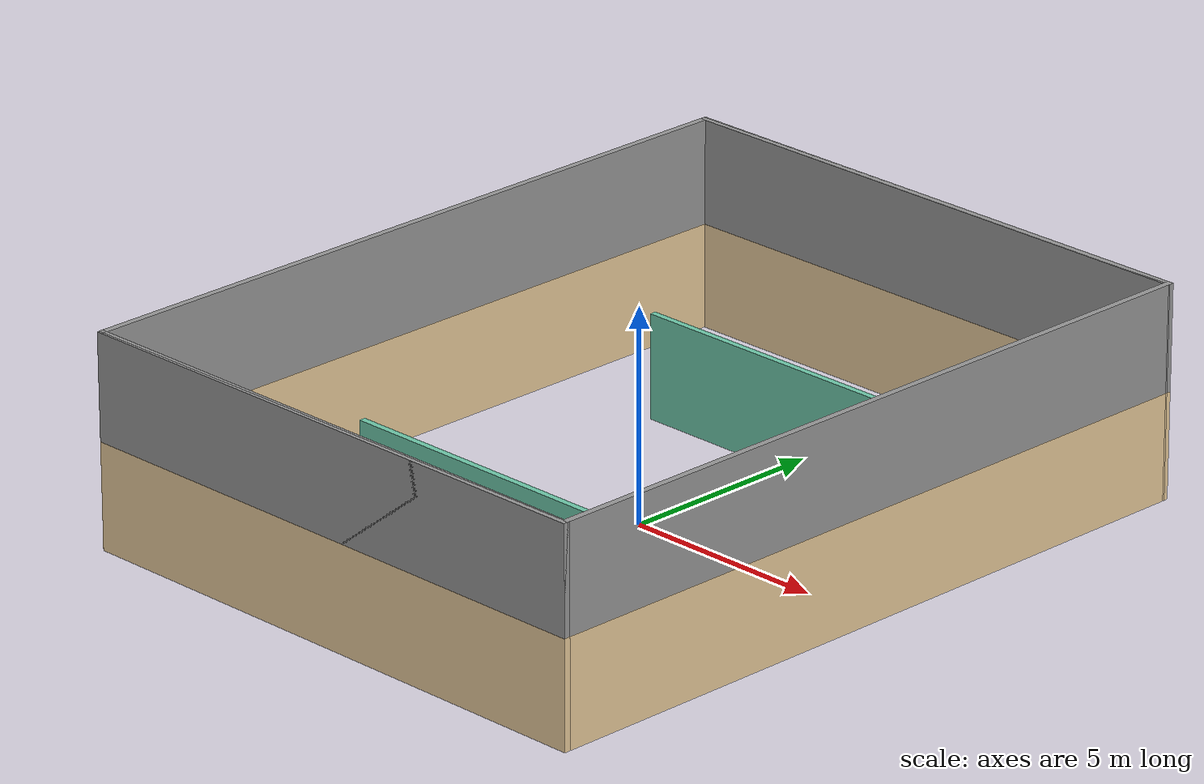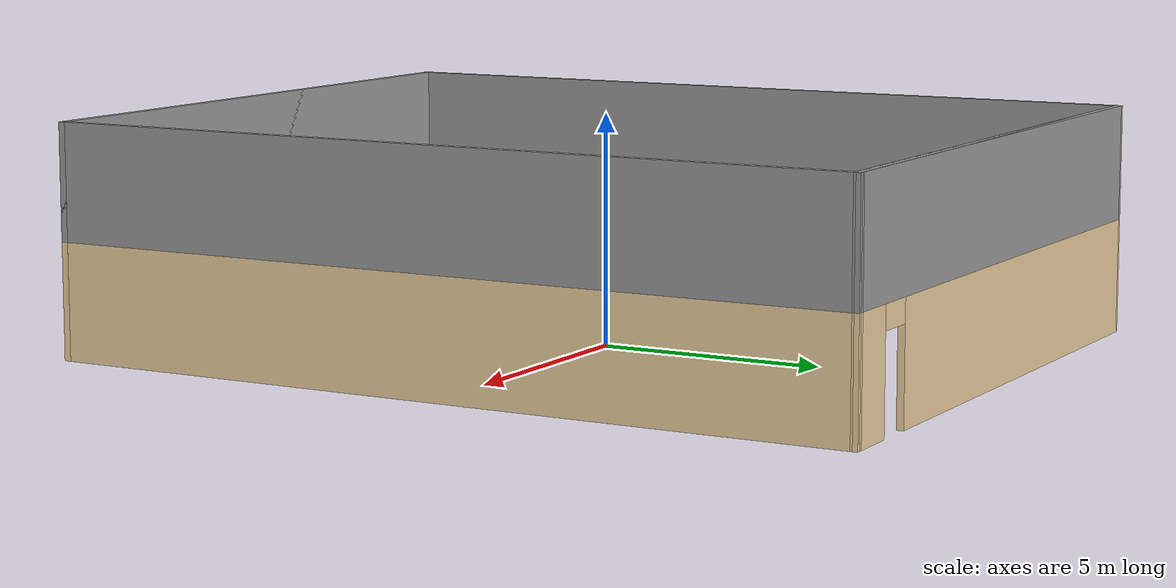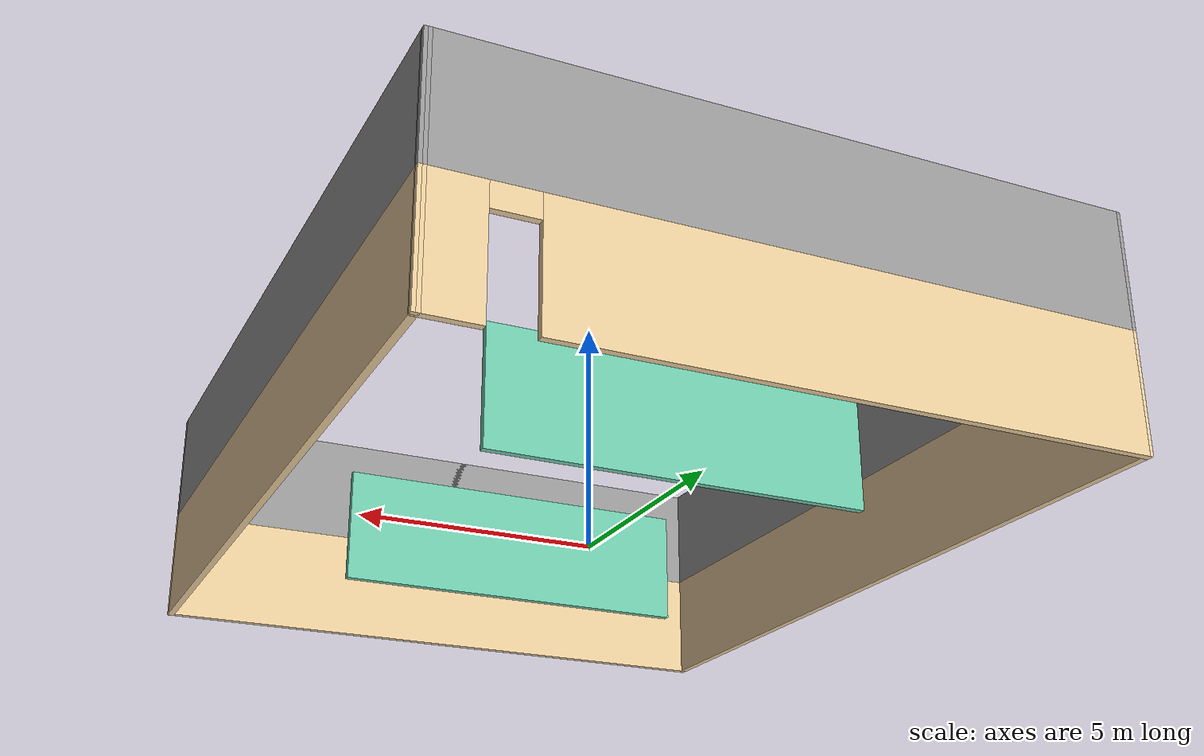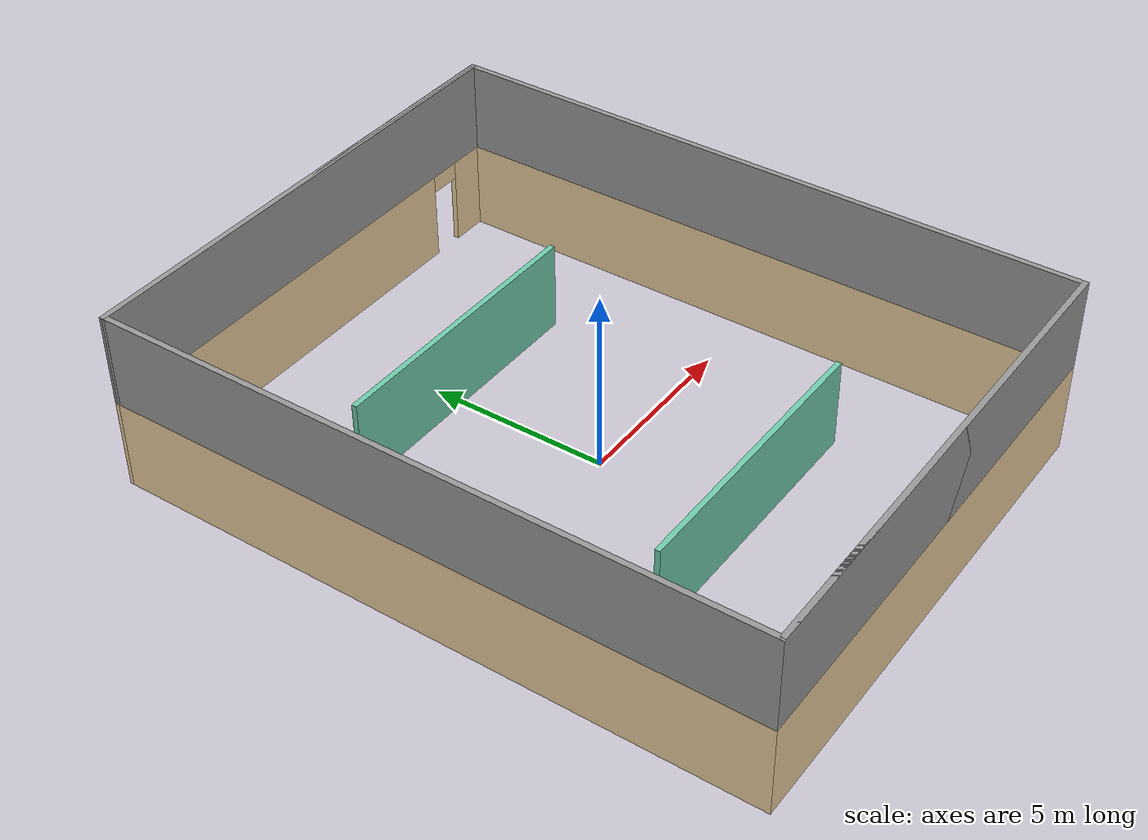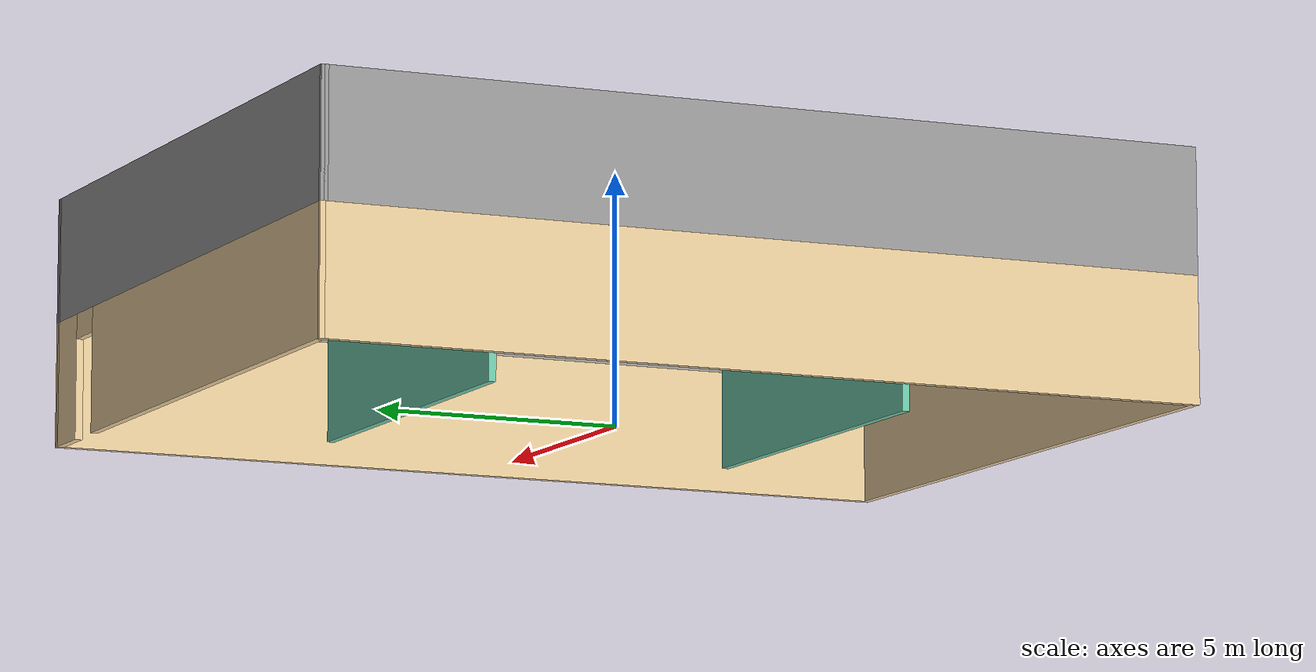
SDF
<?xml version='1.0'?>
<sdf version='1.7'>
  <model name='paredes'>
    <link name='Wall_10'>
      <pose>0 8.92496 2.5 0 -0 0.001098</pose>
      <self_collide>0</self_collide>
      <enable_wind>0</enable_wind>
      <kinematic>0</kinematic>
      <visual name='Wall_10_Visual'>
        <pose>0 0 1.25 0 -0 0</pose>
        <geometry>
          <box>
            <size>14 0.15 2.5</size>
          </box>
        </geometry>
        <material>
          <script>
            <uri>file://media/materials/scripts/gazebo.material</uri>
            <name>Gazebo/Grey</name>
          </script>
          <ambient>1 1 1 1</ambient>
          <shader type='pixel'/>
        </material>
        <meta>
          <layer>1</layer>
        </meta>
        <transparency>0</transparency>
        <cast_shadows>1</cast_shadows>
      </visual>
      <collision name='Wall_10_Collision'>
        <laser_retro>0</laser_retro>
        <max_contacts>10</max_contacts>
        <pose>0 0 1.25 0 -0 0</pose>
        <geometry>
          <box>
            <size>14 0.15 2.5</size>
          </box>
        </geometry>
        <surface>
          <friction>
            <ode>
              <mu>1</mu>
              <mu2>1</mu2>
              <fdir1>0 0 0</fdir1>
              <slip1>0</slip1>
              <slip2>0</slip2>
            </ode>
            <torsional>
              <coefficient>1</coefficient>
              <patch_radius>0</patch_radius>
              <surface_radius>0</surface_radius>
              <use_patch_radius>1</use_patch_radius>
              <ode>
                <slip>0</slip>
              </ode>
            </torsional>
          </friction>
          <bounce>
            <restitution_coefficient>0</restitution_coefficient>
            <threshold>1e+06</threshold>
          </bounce>
          <contact>
            <collide_without_contact>0</collide_without_contact>
            <collide_without_contact_bitmask>1</collide_without_contact_bitmask>
            <collide_bitmask>1</collide_bitmask>
            <ode>
              <soft_cfm>0</soft_cfm>
              <soft_erp>0.2</soft_erp>
              <kp>1e+13</kp>
              <kd>1</kd>
              <max_vel>0.01</max_vel>
              <min_depth>0</min_depth>
            </ode>
            <bullet>
              <split_impulse>1</split_impulse>
              <split_impulse_penetration_threshold>-0.01</split_impulse_penetration_threshold>
              <soft_cfm>0</soft_cfm>
              <soft_erp>0.2</soft_erp>
              <kp>1e+13</kp>
              <kd>1</kd>
            </bullet>
          </contact>
        </surface>
      </collision>
    </link>
    <link name='Wall_11'>
      <pose>-6.925 -0.007645 2.5 0 0 -1.5708</pose>
      <self_collide>0</self_collide>
      <enable_wind>0</enable_wind>
      <kinematic>0</kinematic>
      <visual name='Wall_11_Visual'>
        <pose>0 0 1.25 0 -0 0</pose>
        <geometry>
          <box>
            <size>18 0.15 2.5</size>
          </box>
        </geometry>
        <material>
          <script>
            <uri>file://media/materials/scripts/gazebo.material</uri>
            <name>Gazebo/Grey</name>
          </script>
          <ambient>1 1 1 1</ambient>
          <shader type='pixel'/>
        </material>
        <meta>
          <layer>1</layer>
        </meta>
        <transparency>0</transparency>
        <cast_shadows>1</cast_shadows>
      </visual>
      <collision name='Wall_11_Collision'>
        <laser_retro>0</laser_retro>
        <max_contacts>10</max_contacts>
        <pose>0 0 1.25 0 -0 0</pose>
        <geometry>
          <box>
            <size>18 0.15 2.5</size>
          </box>
        </geometry>
        <surface>
          <friction>
            <ode>
              <mu>1</mu>
              <mu2>1</mu2>
              <fdir1>0 0 0</fdir1>
              <slip1>0</slip1>
              <slip2>0</slip2>
            </ode>
            <torsional>
              <coefficient>1</coefficient>
              <patch_radius>0</patch_radius>
              <surface_radius>0</surface_radius>
              <use_patch_radius>1</use_patch_radius>
              <ode>
                <slip>0</slip>
              </ode>
            </torsional>
          </friction>
          <bounce>
            <restitution_coefficient>0</restitution_coefficient>
            <threshold>1e+06</threshold>
          </bounce>
          <contact>
            <collide_without_contact>0</collide_without_contact>
            <collide_without_contact_bitmask>1</collide_without_contact_bitmask>
            <collide_bitmask>1</collide_bitmask>
            <ode>
              <soft_cfm>0</soft_cfm>
              <soft_erp>0.2</soft_erp>
              <kp>1e+13</kp>
              <kd>1</kd>
              <max_vel>0.01</max_vel>
              <min_depth>0</min_depth>
            </ode>
            <bullet>
              <split_impulse>1</split_impulse>
              <split_impulse_penetration_threshold>-0.01</split_impulse_penetration_threshold>
              <soft_cfm>0</soft_cfm>
              <soft_erp>0.2</soft_erp>
              <kp>1e+13</kp>
              <kd>1</kd>
            </bullet>
          </contact>
        </surface>
      </collision>
    </link>
    <link name='Wall_12'>
      <pose>6.925 0.007564 2.5 0 0 -1.5708</pose>
      <self_collide>0</self_collide>
      <enable_wind>0</enable_wind>
      <kinematic>0</kinematic>
      <gravity>1</gravity>
      <inertial>
        <mass>1</mass>
        <pose>0 0 0 0 -0 0</pose>
        <inertia>
          <ixx>1</ixx>
          <ixy>0</ixy>
          <ixz>0</ixz>
          <iyy>1</iyy>
          <iyz>0</iyz>
          <izz>1</izz>
        </inertia>
      </inertial>
      <visual name='Wall_12_Visual'>
        <pose>0 0 1.25 0 -0 0</pose>
        <geometry>
          <box>
            <size>18 0.15 2.5</size>
          </box>
        </geometry>
        <material>
          <script>
            <uri>file://media/materials/scripts/gazebo.material</uri>
            <name>Gazebo/Grey</name>
          </script>
          <ambient>1 1 1 1</ambient>
          <shader type='pixel'>
            <normal_map>__default__</normal_map>
          </shader>
          <diffuse>0.7 0.7 0.7 1</diffuse>
          <specular>0.01 0.01 0.01 1</specular>
          <emissive>0 0 0 1</emissive>
        </material>
        <meta>
          <layer>1</layer>
        </meta>
        <transparency>0</transparency>
        <cast_shadows>1</cast_shadows>
      </visual>
      <collision name='Wall_12_Collision'>
        <laser_retro>0</laser_retro>
        <max_contacts>10</max_contacts>
        <pose>0 0 1.25 0 -0 0</pose>
        <geometry>
          <box>
            <size>18 0.15 2.5</size>
          </box>
        </geometry>
        <surface>
          <friction>
            <ode>
              <mu>1</mu>
              <mu2>1</mu2>
              <fdir1>0 0 0</fdir1>
              <slip1>0</slip1>
              <slip2>0</slip2>
            </ode>
            <torsional>
              <coefficient>1</coefficient>
              <patch_radius>0</patch_radius>
              <surface_radius>0</surface_radius>
              <use_patch_radius>1</use_patch_radius>
              <ode>
                <slip>0</slip>
              </ode>
            </torsional>
          </friction>
          <bounce>
            <restitution_coefficient>0</restitution_coefficient>
            <threshold>1e+06</threshold>
          </bounce>
          <contact>
            <collide_without_contact>0</collide_without_contact>
            <collide_without_contact_bitmask>1</collide_without_contact_bitmask>
            <collide_bitmask>1</collide_bitmask>
            <ode>
              <soft_cfm>0</soft_cfm>
              <soft_erp>0.2</soft_erp>
              <kp>1e+13</kp>
              <kd>1</kd>
              <max_vel>0.01</max_vel>
              <min_depth>0</min_depth>
            </ode>
            <bullet>
              <split_impulse>1</split_impulse>
              <split_impulse_penetration_threshold>-0.01</split_impulse_penetration_threshold>
              <soft_cfm>0</soft_cfm>
              <soft_erp>0.2</soft_erp>
              <kp>1e+13</kp>
              <kd>1</kd>
            </bullet>
          </contact>
        </surface>
      </collision>
    </link>
    <link name='Wall_13'>
      <pose>0 -8.93265 2.5 0 -0 0</pose>
      <self_collide>0</self_collide>
      <enable_wind>0</enable_wind>
      <kinematic>0</kinematic>
      <visual name='Wall_13_Visual'>
        <pose>0 0 1.25 0 -0 0</pose>
        <geometry>
          <box>
            <size>14 0.15 2.5</size>
          </box>
        </geometry>
        <material>
          <script>
            <uri>file://media/materials/scripts/gazebo.material</uri>
            <name>Gazebo/Grey</name>
          </script>
          <ambient>1 1 1 1</ambient>
          <shader type='pixel'/>
        </material>
        <meta>
          <layer>1</layer>
        </meta>
        <transparency>0</transparency>
        <cast_shadows>1</cast_shadows>
      </visual>
      <collision name='Wall_13_Collision'>
        <laser_retro>0</laser_retro>
        <max_contacts>10</max_contacts>
        <pose>0 0 1.25 0 -0 0</pose>
        <geometry>
          <box>
            <size>14 0.15 2.5</size>
          </box>
        </geometry>
        <surface>
          <friction>
            <ode>
              <mu>1</mu>
              <mu2>1</mu2>
              <fdir1>0 0 0</fdir1>
              <slip1>0</slip1>
              <slip2>0</slip2>
            </ode>
            <torsional>
              <coefficient>1</coefficient>
              <patch_radius>0</patch_radius>
              <surface_radius>0</surface_radius>
              <use_patch_radius>1</use_patch_radius>
              <ode>
                <slip>0</slip>
              </ode>
            </torsional>
          </friction>
          <bounce>
            <restitution_coefficient>0</restitution_coefficient>
            <threshold>1e+06</threshold>
          </bounce>
          <contact>
            <collide_without_contact>0</collide_without_contact>
            <collide_without_contact_bitmask>1</collide_without_contact_bitmask>
            <collide_bitmask>1</collide_bitmask>
            <ode>
              <soft_cfm>0</soft_cfm>
              <soft_erp>0.2</soft_erp>
              <kp>1e+13</kp>
              <kd>1</kd>
              <max_vel>0.01</max_vel>
              <min_depth>0</min_depth>
            </ode>
            <bullet>
              <split_impulse>1</split_impulse>
              <split_impulse_penetration_threshold>-0.01</split_impulse_penetration_threshold>
              <soft_cfm>0</soft_cfm>
              <soft_erp>0.2</soft_erp>
              <kp>1e+13</kp>
              <kd>1</kd>
            </bullet>
          </contact>
        </surface>
      </collision>
    </link>
    <link name='Wall_14'>
      <pose>0 8.91736 2.5 0 -0 0</pose>
      <self_collide>0</self_collide>
      <enable_wind>0</enable_wind>
      <kinematic>0</kinematic>
      <visual name='Wall_14_Visual'>
        <pose>0 0 1.25 0 -0 0</pose>
        <geometry>
          <box>
            <size>14 0.15 2.5</size>
          </box>
        </geometry>
        <material>
          <script>
            <uri>file://media/materials/scripts/gazebo.material</uri>
            <name>Gazebo/Grey</name>
          </script>
          <ambient>1 1 1 1</ambient>
          <shader type='pixel'/>
        </material>
        <meta>
          <layer>1</layer>
        </meta>
        <transparency>0</transparency>
        <cast_shadows>1</cast_shadows>
      </visual>
      <collision name='Wall_14_Collision'>
        <laser_retro>0</laser_retro>
        <max_contacts>10</max_contacts>
        <pose>0 0 1.25 0 -0 0</pose>
        <geometry>
          <box>
            <size>14 0.15 2.5</size>
          </box>
        </geometry>
        <surface>
          <friction>
            <ode>
              <mu>1</mu>
              <mu2>1</mu2>
              <fdir1>0 0 0</fdir1>
              <slip1>0</slip1>
              <slip2>0</slip2>
            </ode>
            <torsional>
              <coefficient>1</coefficient>
              <patch_radius>0</patch_radius>
              <surface_radius>0</surface_radius>
              <use_patch_radius>1</use_patch_radius>
              <ode>
                <slip>0</slip>
              </ode>
            </torsional>
          </friction>
          <bounce>
            <restitution_coefficient>0</restitution_coefficient>
            <threshold>1e+06</threshold>
          </bounce>
          <contact>
            <collide_without_contact>0</collide_without_contact>
            <collide_without_contact_bitmask>1</collide_without_contact_bitmask>
            <collide_bitmask>1</collide_bitmask>
            <ode>
              <soft_cfm>0</soft_cfm>
              <soft_erp>0.2</soft_erp>
              <kp>1e+13</kp>
              <kd>1</kd>
              <max_vel>0.01</max_vel>
              <min_depth>0</min_depth>
            </ode>
            <bullet>
              <split_impulse>1</split_impulse>
              <split_impulse_penetration_threshold>-0.01</split_impulse_penetration_threshold>
              <soft_cfm>0</soft_cfm>
              <soft_erp>0.2</soft_erp>
              <kp>1e+13</kp>
              <kd>1</kd>
            </bullet>
          </contact>
        </surface>
      </collision>
    </link>
    <link name='Wall_16'>
      <pose>-6.925 -0.007645 2.5 0 0 -1.5708</pose>
      <self_collide>0</self_collide>
      <enable_wind>0</enable_wind>
      <kinematic>0</kinematic>
      <visual name='Wall_16_Visual'>
        <pose>0 0 1.25 0 -0 0</pose>
        <geometry>
          <box>
            <size>18 0.15 2.5</size>
          </box>
        </geometry>
        <material>
          <script>
            <uri>file://media/materials/scripts/gazebo.material</uri>
            <name>Gazebo/Grey</name>
          </script>
          <ambient>1 1 1 1</ambient>
          <shader type='pixel'/>
        </material>
        <meta>
          <layer>1</layer>
        </meta>
        <transparency>0</transparency>
        <cast_shadows>1</cast_shadows>
      </visual>
      <collision name='Wall_16_Collision'>
        <laser_retro>0</laser_retro>
        <max_contacts>10</max_contacts>
        <pose>0 0 1.25 0 -0 0</pose>
        <geometry>
          <box>
            <size>18 0.15 2.5</size>
          </box>
        </geometry>
        <surface>
          <friction>
            <ode>
              <mu>1</mu>
              <mu2>1</mu2>
              <fdir1>0 0 0</fdir1>
              <slip1>0</slip1>
              <slip2>0</slip2>
            </ode>
            <torsional>
              <coefficient>1</coefficient>
              <patch_radius>0</patch_radius>
              <surface_radius>0</surface_radius>
              <use_patch_radius>1</use_patch_radius>
              <ode>
                <slip>0</slip>
              </ode>
            </torsional>
          </friction>
          <bounce>
            <restitution_coefficient>0</restitution_coefficient>
            <threshold>1e+06</threshold>
          </bounce>
          <contact>
            <collide_without_contact>0</collide_without_contact>
            <collide_without_contact_bitmask>1</collide_without_contact_bitmask>
            <collide_bitmask>1</collide_bitmask>
            <ode>
              <soft_cfm>0</soft_cfm>
              <soft_erp>0.2</soft_erp>
              <kp>1e+13</kp>
              <kd>1</kd>
              <max_vel>0.01</max_vel>
              <min_depth>0</min_depth>
            </ode>
            <bullet>
              <split_impulse>1</split_impulse>
              <split_impulse_penetration_threshold>-0.01</split_impulse_penetration_threshold>
              <soft_cfm>0</soft_cfm>
              <soft_erp>0.2</soft_erp>
              <kp>1e+13</kp>
              <kd>1</kd>
            </bullet>
          </contact>
        </surface>
      </collision>
    </link>
    <link name='Wall_2'>
      <pose>0 8.92496 0 0 -0 0.001098</pose>
      <self_collide>0</self_collide>
      <enable_wind>0</enable_wind>
      <kinematic>0</kinematic>
      <visual name='Wall_2_Visual_1'>
        <pose>6.41449 0 1.25 0 -0 0</pose>
        <geometry>
          <box>
            <size>1.17102 0.15 2.5</size>
          </box>
        </geometry>
        <material>
          <script>
            <uri>file://media/materials/scripts/gazebo.material</uri>
            <name>Gazebo/Grey</name>
          </script>
          <ambient>0.921569 0.807843 0.615686 1</ambient>
          <shader type='pixel'/>
        </material>
        <meta>
          <layer>0</layer>
        </meta>
        <transparency>0</transparency>
        <cast_shadows>1</cast_shadows>
      </visual>
      <visual name='Wall_2_Visual_2'>
        <pose>5.37898 0 2.25 0 -0 0</pose>
        <geometry>
          <box>
            <size>0.9 0.15 0.5</size>
          </box>
        </geometry>
        <material>
          <script>
            <uri>file://media/materials/scripts/gazebo.material</uri>
            <name>Gazebo/Grey</name>
          </script>
          <ambient>0.921569 0.807843 0.615686 1</ambient>
          <shader type='pixel'/>
        </material>
        <meta>
          <layer>0</layer>
        </meta>
        <transparency>0</transparency>
        <cast_shadows>1</cast_shadows>
      </visual>
      <visual name='Wall_2_Visual_0'>
        <pose>-1.03551 0 1.25 0 -0 0</pose>
        <geometry>
          <box>
            <size>11.929 0.15 2.5</size>
          </box>
        </geometry>
        <material>
          <script>
            <uri>file://media/materials/scripts/gazebo.material</uri>
            <name>Gazebo/Grey</name>
          </script>
          <ambient>0.921569 0.807843 0.615686 1</ambient>
          <shader type='pixel'/>
        </material>
        <meta>
          <layer>0</layer>
        </meta>
        <transparency>0</transparency>
        <cast_shadows>1</cast_shadows>
      </visual>
      <collision name='Wall_2_Collision_0'>
        <laser_retro>0</laser_retro>
        <max_contacts>10</max_contacts>
        <pose>-1.03551 0 1.25 0 -0 0</pose>
        <geometry>
          <box>
            <size>11.929 0.15 2.5</size>
          </box>
        </geometry>
        <surface>
          <friction>
            <ode>
              <mu>1</mu>
              <mu2>1</mu2>
              <fdir1>0 0 0</fdir1>
              <slip1>0</slip1>
              <slip2>0</slip2>
            </ode>
            <torsional>
              <coefficient>1</coefficient>
              <patch_radius>0</patch_radius>
              <surface_radius>0</surface_radius>
              <use_patch_radius>1</use_patch_radius>
              <ode>
                <slip>0</slip>
              </ode>
            </torsional>
          </friction>
          <bounce>
            <restitution_coefficient>0</restitution_coefficient>
            <threshold>1e+06</threshold>
          </bounce>
          <contact>
            <collide_without_contact>0</collide_without_contact>
            <collide_without_contact_bitmask>1</collide_without_contact_bitmask>
            <collide_bitmask>1</collide_bitmask>
            <ode>
              <soft_cfm>0</soft_cfm>
              <soft_erp>0.2</soft_erp>
              <kp>1e+13</kp>
              <kd>1</kd>
              <max_vel>0.01</max_vel>
              <min_depth>0</min_depth>
            </ode>
            <bullet>
              <split_impulse>1</split_impulse>
              <split_impulse_penetration_threshold>-0.01</split_impulse_penetration_threshold>
              <soft_cfm>0</soft_cfm>
              <soft_erp>0.2</soft_erp>
              <kp>1e+13</kp>
              <kd>1</kd>
            </bullet>
          </contact>
        </surface>
      </collision>
      <collision name='Wall_2_Collision_1'>
        <laser_retro>0</laser_retro>
        <max_contacts>10</max_contacts>
        <pose>6.41449 0 1.25 0 -0 0</pose>
        <geometry>
          <box>
            <size>1.17102 0.15 2.5</size>
          </box>
        </geometry>
        <surface>
          <friction>
            <ode>
              <mu>1</mu>
              <mu2>1</mu2>
              <fdir1>0 0 0</fdir1>
              <slip1>0</slip1>
              <slip2>0</slip2>
            </ode>
            <torsional>
              <coefficient>1</coefficient>
              <patch_radius>0</patch_radius>
              <surface_radius>0</surface_radius>
              <use_patch_radius>1</use_patch_radius>
              <ode>
                <slip>0</slip>
              </ode>
            </torsional>
          </friction>
          <bounce>
            <restitution_coefficient>0</restitution_coefficient>
            <threshold>1e+06</threshold>
          </bounce>
          <contact>
            <collide_without_contact>0</collide_without_contact>
            <collide_without_contact_bitmask>1</collide_without_contact_bitmask>
            <collide_bitmask>1</collide_bitmask>
            <ode>
              <soft_cfm>0</soft_cfm>
              <soft_erp>0.2</soft_erp>
              <kp>1e+13</kp>
              <kd>1</kd>
              <max_vel>0.01</max_vel>
              <min_depth>0</min_depth>
            </ode>
            <bullet>
              <split_impulse>1</split_impulse>
              <split_impulse_penetration_threshold>-0.01</split_impulse_penetration_threshold>
              <soft_cfm>0</soft_cfm>
              <soft_erp>0.2</soft_erp>
              <kp>1e+13</kp>
              <kd>1</kd>
            </bullet>
          </contact>
        </surface>
      </collision>
      <collision name='Wall_2_Collision_2'>
        <laser_retro>0</laser_retro>
        <max_contacts>10</max_contacts>
        <pose>5.37898 0 2.25 0 -0 0</pose>
        <geometry>
          <box>
            <size>0.9 0.15 0.5</size>
          </box>
        </geometry>
        <surface>
          <friction>
            <ode>
              <mu>1</mu>
              <mu2>1</mu2>
              <fdir1>0 0 0</fdir1>
              <slip1>0</slip1>
              <slip2>0</slip2>
            </ode>
            <torsional>
              <coefficient>1</coefficient>
              <patch_radius>0</patch_radius>
              <surface_radius>0</surface_radius>
              <use_patch_radius>1</use_patch_radius>
              <ode>
                <slip>0</slip>
              </ode>
            </torsional>
          </friction>
          <bounce>
            <restitution_coefficient>0</restitution_coefficient>
            <threshold>1e+06</threshold>
          </bounce>
          <contact>
            <collide_without_contact>0</collide_without_contact>
            <collide_without_contact_bitmask>1</collide_without_contact_bitmask>
            <collide_bitmask>1</collide_bitmask>
            <ode>
              <soft_cfm>0</soft_cfm>
              <soft_erp>0.2</soft_erp>
              <kp>1e+13</kp>
              <kd>1</kd>
              <max_vel>0.01</max_vel>
              <min_depth>0</min_depth>
            </ode>
            <bullet>
              <split_impulse>1</split_impulse>
              <split_impulse_penetration_threshold>-0.01</split_impulse_penetration_threshold>
              <soft_cfm>0</soft_cfm>
              <soft_erp>0.2</soft_erp>
              <kp>1e+13</kp>
              <kd>1</kd>
            </bullet>
          </contact>
        </surface>
      </collision>
    </link>
    <link name='Wall_20'>
      <pose>0 -8.93265 2.5 0 -0 3.14159</pose>
      <self_collide>0</self_collide>
      <enable_wind>0</enable_wind>
      <kinematic>0</kinematic>
      <visual name='Wall_20_Visual'>
        <pose>0 0 1.25 0 -0 0</pose>
        <geometry>
          <box>
            <size>14 0.15 2.5</size>
          </box>
        </geometry>
        <material>
          <script>
            <uri>file://media/materials/scripts/gazebo.material</uri>
            <name>Gazebo/Grey</name>
          </script>
          <ambient>1 1 1 1</ambient>
          <shader type='pixel'/>
        </material>
        <meta>
          <layer>1</layer>
        </meta>
        <transparency>0</transparency>
        <cast_shadows>1</cast_shadows>
      </visual>
      <collision name='Wall_20_Collision'>
        <laser_retro>0</laser_retro>
        <max_contacts>10</max_contacts>
        <pose>0 0 1.25 0 -0 0</pose>
        <geometry>
          <box>
            <size>14 0.15 2.5</size>
          </box>
        </geometry>
        <surface>
          <friction>
            <ode>
              <mu>1</mu>
              <mu2>1</mu2>
              <fdir1>0 0 0</fdir1>
              <slip1>0</slip1>
              <slip2>0</slip2>
            </ode>
            <torsional>
              <coefficient>1</coefficient>
              <patch_radius>0</patch_radius>
              <surface_radius>0</surface_radius>
              <use_patch_radius>1</use_patch_radius>
              <ode>
                <slip>0</slip>
              </ode>
            </torsional>
          </friction>
          <bounce>
            <restitution_coefficient>0</restitution_coefficient>
            <threshold>1e+06</threshold>
          </bounce>
          <contact>
            <collide_without_contact>0</collide_without_contact>
            <collide_without_contact_bitmask>1</collide_without_contact_bitmask>
            <collide_bitmask>1</collide_bitmask>
            <ode>
              <soft_cfm>0</soft_cfm>
              <soft_erp>0.2</soft_erp>
              <kp>1e+13</kp>
              <kd>1</kd>
              <max_vel>0.01</max_vel>
              <min_depth>0</min_depth>
            </ode>
            <bullet>
              <split_impulse>1</split_impulse>
              <split_impulse_penetration_threshold>-0.01</split_impulse_penetration_threshold>
              <soft_cfm>0</soft_cfm>
              <soft_erp>0.2</soft_erp>
              <kp>1e+13</kp>
              <kd>1</kd>
            </bullet>
          </contact>
        </surface>
      </collision>
    </link>
    <link name='Wall_22'>
      <pose>0.076814 4.29812 0 0 -0 0</pose>
      <self_collide>0</self_collide>
      <enable_wind>0</enable_wind>
      <kinematic>0</kinematic>
      <visual name='Wall_22_Visual'>
        <pose>0 0 1.25 0 -0 0</pose>
        <geometry>
          <box>
            <size>8 0.15 2.5</size>
          </box>
        </geometry>
        <material>
          <script>
            <uri>file://media/materials/scripts/gazebo.material</uri>
            <name>Gazebo/Grey</name>
          </script>
          <ambient>0.435294 0.796078 0.67451 1</ambient>
          <shader type='pixel'/>
        </material>
        <meta>
          <layer>0</layer>
        </meta>
        <transparency>0</transparency>
        <cast_shadows>1</cast_shadows>
      </visual>
      <collision name='Wall_22_Collision'>
        <laser_retro>0</laser_retro>
        <max_contacts>10</max_contacts>
        <pose>0 0 1.25 0 -0 0</pose>
        <geometry>
          <box>
            <size>8 0.15 2.5</size>
          </box>
        </geometry>
        <surface>
          <friction>
            <ode>
              <mu>1</mu>
              <mu2>1</mu2>
              <fdir1>0 0 0</fdir1>
              <slip1>0</slip1>
              <slip2>0</slip2>
            </ode>
            <torsional>
              <coefficient>1</coefficient>
              <patch_radius>0</patch_radius>
              <surface_radius>0</surface_radius>
              <use_patch_radius>1</use_patch_radius>
              <ode>
                <slip>0</slip>
              </ode>
            </torsional>
          </friction>
          <bounce>
            <restitution_coefficient>0</restitution_coefficient>
            <threshold>1e+06</threshold>
          </bounce>
          <contact>
            <collide_without_contact>0</collide_without_contact>
            <collide_without_contact_bitmask>1</collide_without_contact_bitmask>
            <collide_bitmask>1</collide_bitmask>
            <ode>
              <soft_cfm>0</soft_cfm>
              <soft_erp>0.2</soft_erp>
              <kp>1e+13</kp>
              <kd>1</kd>
              <max_vel>0.01</max_vel>
              <min_depth>0</min_depth>
            </ode>
            <bullet>
              <split_impulse>1</split_impulse>
              <split_impulse_penetration_threshold>-0.01</split_impulse_penetration_threshold>
              <soft_cfm>0</soft_cfm>
              <soft_erp>0.2</soft_erp>
              <kp>1e+13</kp>
              <kd>1</kd>
            </bullet>
          </contact>
        </surface>
      </collision>
    </link>
    <link name='Wall_24'>
      <pose>-0.021051 -4.26506 0 0 -0 0</pose>
      <self_collide>0</self_collide>
      <enable_wind>0</enable_wind>
      <kinematic>0</kinematic>
      <visual name='Wall_24_Visual'>
        <pose>0 0 1.25 0 -0 0</pose>
        <geometry>
          <box>
            <size>8 0.15 2.5</size>
          </box>
        </geometry>
        <material>
          <script>
            <uri>file://media/materials/scripts/gazebo.material</uri>
            <name>Gazebo/Grey</name>
          </script>
          <ambient>0.435294 0.796078 0.67451 1</ambient>
          <shader type='pixel'/>
        </material>
        <meta>
          <layer>0</layer>
        </meta>
        <transparency>0</transparency>
        <cast_shadows>1</cast_shadows>
      </visual>
      <collision name='Wall_24_Collision'>
        <laser_retro>0</laser_retro>
        <max_contacts>10</max_contacts>
        <pose>0 0 1.25 0 -0 0</pose>
        <geometry>
          <box>
            <size>8 0.15 2.5</size>
          </box>
        </geometry>
        <surface>
          <friction>
            <ode>
              <mu>1</mu>
              <mu2>1</mu2>
              <fdir1>0 0 0</fdir1>
              <slip1>0</slip1>
              <slip2>0</slip2>
            </ode>
            <torsional>
              <coefficient>1</coefficient>
              <patch_radius>0</patch_radius>
              <surface_radius>0</surface_radius>
              <use_patch_radius>1</use_patch_radius>
              <ode>
                <slip>0</slip>
              </ode>
            </torsional>
          </friction>
          <bounce>
            <restitution_coefficient>0</restitution_coefficient>
            <threshold>1e+06</threshold>
          </bounce>
          <contact>
            <collide_without_contact>0</collide_without_contact>
            <collide_without_contact_bitmask>1</collide_without_contact_bitmask>
            <collide_bitmask>1</collide_bitmask>
            <ode>
              <soft_cfm>0</soft_cfm>
              <soft_erp>0.2</soft_erp>
              <kp>1e+13</kp>
              <kd>1</kd>
              <max_vel>0.01</max_vel>
              <min_depth>0</min_depth>
            </ode>
            <bullet>
              <split_impulse>1</split_impulse>
              <split_impulse_penetration_threshold>-0.01</split_impulse_penetration_threshold>
              <soft_cfm>0</soft_cfm>
              <soft_erp>0.2</soft_erp>
              <kp>1e+13</kp>
              <kd>1</kd>
            </bullet>
          </contact>
        </surface>
      </collision>
    </link>
    <link name='Wall_4'>
      <pose>-6.925 -0.007645 0 0 0 -1.5708</pose>
      <self_collide>0</self_collide>
      <enable_wind>0</enable_wind>
      <kinematic>0</kinematic>
      <visual name='Wall_4_Visual'>
        <pose>0 0 1.25 0 -0 0</pose>
        <geometry>
          <box>
            <size>18 0.15 2.5</size>
          </box>
        </geometry>
        <material>
          <script>
            <uri>file://media/materials/scripts/gazebo.material</uri>
            <name>Gazebo/Grey</name>
          </script>
          <ambient>0.921569 0.807843 0.615686 1</ambient>
          <shader type='pixel'/>
        </material>
        <meta>
          <layer>0</layer>
        </meta>
        <transparency>0</transparency>
        <cast_shadows>1</cast_shadows>
      </visual>
      <collision name='Wall_4_Collision'>
        <laser_retro>0</laser_retro>
        <max_contacts>10</max_contacts>
        <pose>0 0 1.25 0 -0 0</pose>
        <geometry>
          <box>
            <size>18 0.15 2.5</size>
          </box>
        </geometry>
        <surface>
          <friction>
            <ode>
              <mu>1</mu>
              <mu2>1</mu2>
              <fdir1>0 0 0</fdir1>
              <slip1>0</slip1>
              <slip2>0</slip2>
            </ode>
            <torsional>
              <coefficient>1</coefficient>
              <patch_radius>0</patch_radius>
              <surface_radius>0</surface_radius>
              <use_patch_radius>1</use_patch_radius>
              <ode>
                <slip>0</slip>
              </ode>
            </torsional>
          </friction>
          <bounce>
            <restitution_coefficient>0</restitution_coefficient>
            <threshold>1e+06</threshold>
          </bounce>
          <contact>
            <collide_without_contact>0</collide_without_contact>
            <collide_without_contact_bitmask>1</collide_without_contact_bitmask>
            <collide_bitmask>1</collide_bitmask>
            <ode>
              <soft_cfm>0</soft_cfm>
              <soft_erp>0.2</soft_erp>
              <kp>1e+13</kp>
              <kd>1</kd>
              <max_vel>0.01</max_vel>
              <min_depth>0</min_depth>
            </ode>
            <bullet>
              <split_impulse>1</split_impulse>
              <split_impulse_penetration_threshold>-0.01</split_impulse_penetration_threshold>
              <soft_cfm>0</soft_cfm>
              <soft_erp>0.2</soft_erp>
              <kp>1e+13</kp>
              <kd>1</kd>
            </bullet>
          </contact>
        </surface>
      </collision>
    </link>
    <link name='Wall_6'>
      <pose>6.925 0.007564 0 0 0 -1.5708</pose>
      <self_collide>0</self_collide>
      <enable_wind>0</enable_wind>
      <kinematic>0</kinematic>
      <visual name='Wall_6_Visual'>
        <pose>0 0 1.25 0 -0 0</pose>
        <geometry>
          <box>
            <size>18 0.15 2.5</size>
          </box>
        </geometry>
        <material>
          <script>
            <uri>file://media/materials/scripts/gazebo.material</uri>
            <name>Gazebo/Grey</name>
          </script>
          <ambient>0.921569 0.807843 0.615686 1</ambient>
          <shader type='pixel'/>
        </material>
        <meta>
          <layer>0</layer>
        </meta>
        <transparency>0</transparency>
        <cast_shadows>1</cast_shadows>
      </visual>
      <collision name='Wall_6_Collision'>
        <laser_retro>0</laser_retro>
        <max_contacts>10</max_contacts>
        <pose>0 0 1.25 0 -0 0</pose>
        <geometry>
          <box>
            <size>18 0.15 2.5</size>
          </box>
        </geometry>
        <surface>
          <friction>
            <ode>
              <mu>1</mu>
              <mu2>1</mu2>
              <fdir1>0 0 0</fdir1>
              <slip1>0</slip1>
              <slip2>0</slip2>
            </ode>
            <torsional>
              <coefficient>1</coefficient>
              <patch_radius>0</patch_radius>
              <surface_radius>0</surface_radius>
              <use_patch_radius>1</use_patch_radius>
              <ode>
                <slip>0</slip>
              </ode>
            </torsional>
          </friction>
          <bounce>
            <restitution_coefficient>0</restitution_coefficient>
            <threshold>1e+06</threshold>
          </bounce>
          <contact>
            <collide_without_contact>0</collide_without_contact>
            <collide_without_contact_bitmask>1</collide_without_contact_bitmask>
            <collide_bitmask>1</collide_bitmask>
            <ode>
              <soft_cfm>0</soft_cfm>
              <soft_erp>0.2</soft_erp>
              <kp>1e+13</kp>
              <kd>1</kd>
              <max_vel>0.01</max_vel>
              <min_depth>0</min_depth>
            </ode>
            <bullet>
              <split_impulse>1</split_impulse>
              <split_impulse_penetration_threshold>-0.01</split_impulse_penetration_threshold>
              <soft_cfm>0</soft_cfm>
              <soft_erp>0.2</soft_erp>
              <kp>1e+13</kp>
              <kd>1</kd>
            </bullet>
          </contact>
        </surface>
      </collision>
    </link>
    <link name='Wall_8'>
      <pose>0 -8.93265 0 0 -0 0</pose>
      <self_collide>0</self_collide>
      <enable_wind>0</enable_wind>
      <kinematic>0</kinematic>
      <visual name='Wall_8_Visual'>
        <pose>0 0 1.25 0 -0 0</pose>
        <geometry>
          <box>
            <size>14 0.15 2.5</size>
          </box>
        </geometry>
        <material>
          <script>
            <uri>file://media/materials/scripts/gazebo.material</uri>
            <name>Gazebo/Grey</name>
          </script>
          <ambient>0.921569 0.807843 0.615686 1</ambient>
          <shader type='pixel'/>
        </material>
        <meta>
          <layer>0</layer>
        </meta>
        <transparency>0</transparency>
        <cast_shadows>1</cast_shadows>
      </visual>
      <collision name='Wall_8_Collision'>
        <laser_retro>0</laser_retro>
        <max_contacts>10</max_contacts>
        <pose>0 0 1.25 0 -0 0</pose>
        <geometry>
          <box>
            <size>14 0.15 2.5</size>
          </box>
        </geometry>
        <surface>
          <friction>
            <ode>
              <mu>1</mu>
              <mu2>1</mu2>
              <fdir1>0 0 0</fdir1>
              <slip1>0</slip1>
              <slip2>0</slip2>
            </ode>
            <torsional>
              <coefficient>1</coefficient>
              <patch_radius>0</patch_radius>
              <surface_radius>0</surface_radius>
              <use_patch_radius>1</use_patch_radius>
              <ode>
                <slip>0</slip>
              </ode>
            </torsional>
          </friction>
          <bounce>
            <restitution_coefficient>0</restitution_coefficient>
            <threshold>1e+06</threshold>
          </bounce>
          <contact>
            <collide_without_contact>0</collide_without_contact>
            <collide_without_contact_bitmask>1</collide_without_contact_bitmask>
            <collide_bitmask>1</collide_bitmask>
            <ode>
              <soft_cfm>0</soft_cfm>
              <soft_erp>0.2</soft_erp>
              <kp>1e+13</kp>
              <kd>1</kd>
              <max_vel>0.01</max_vel>
              <min_depth>0</min_depth>
            </ode>
            <bullet>
              <split_impulse>1</split_impulse>
              <split_impulse_penetration_threshold>-0.01</split_impulse_penetration_threshold>
              <soft_cfm>0</soft_cfm>
              <soft_erp>0.2</soft_erp>
              <kp>1e+13</kp>
              <kd>1</kd>
            </bullet>
          </contact>
        </surface>
      </collision>
    </link>
    <static>1</static>
    <allow_auto_disable>1</allow_auto_disable>
  </model>
</sdf>
